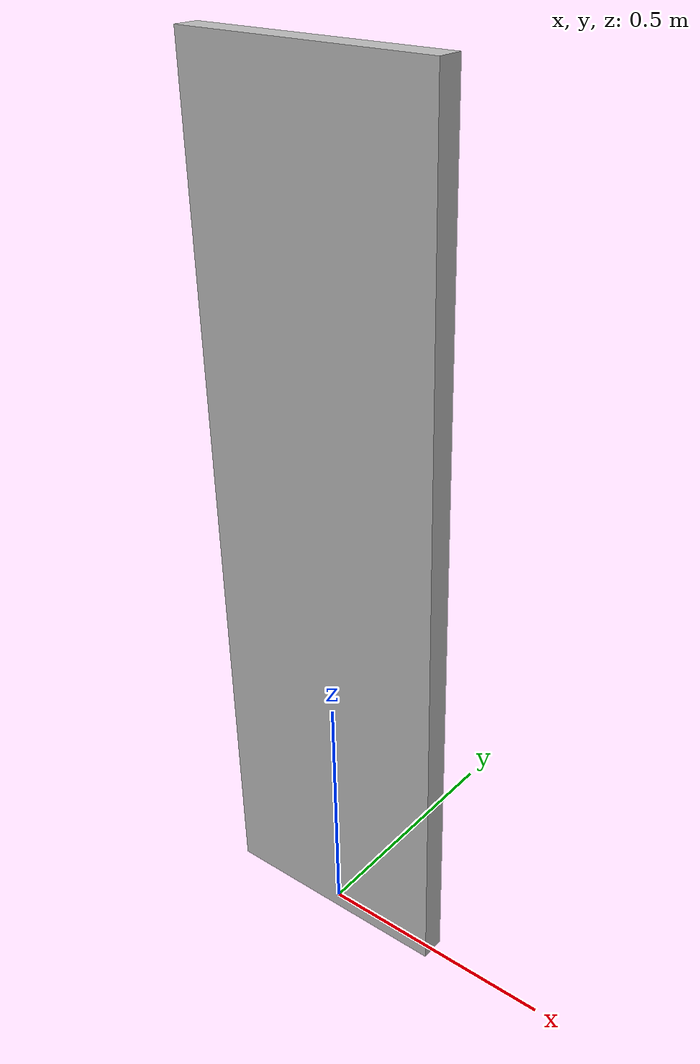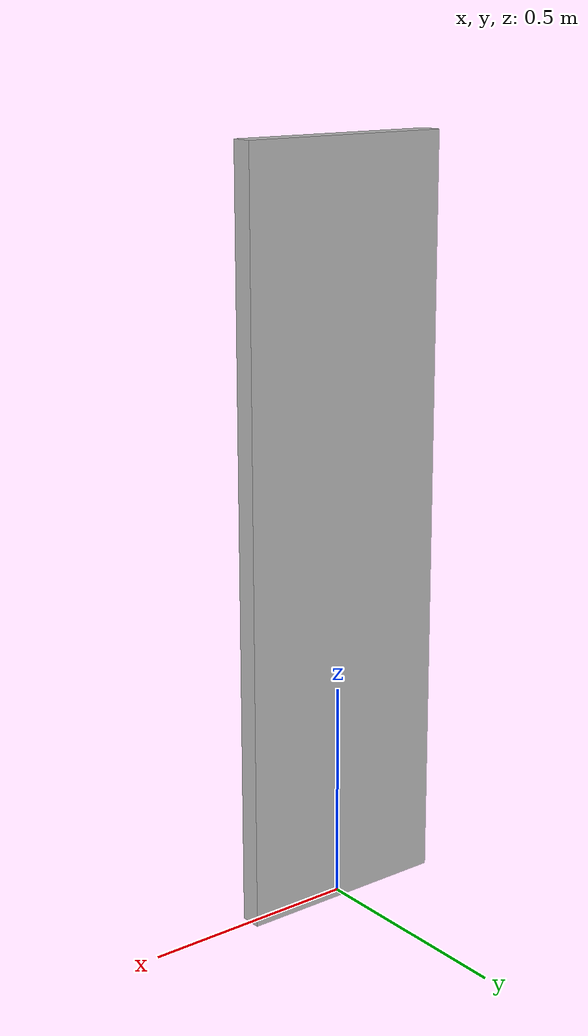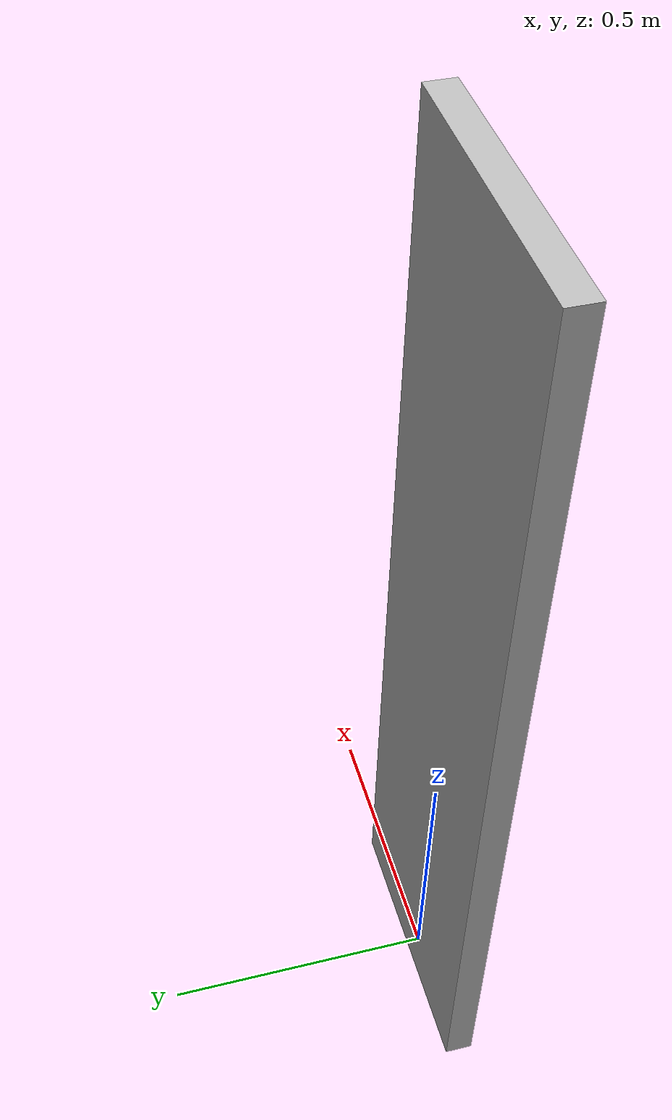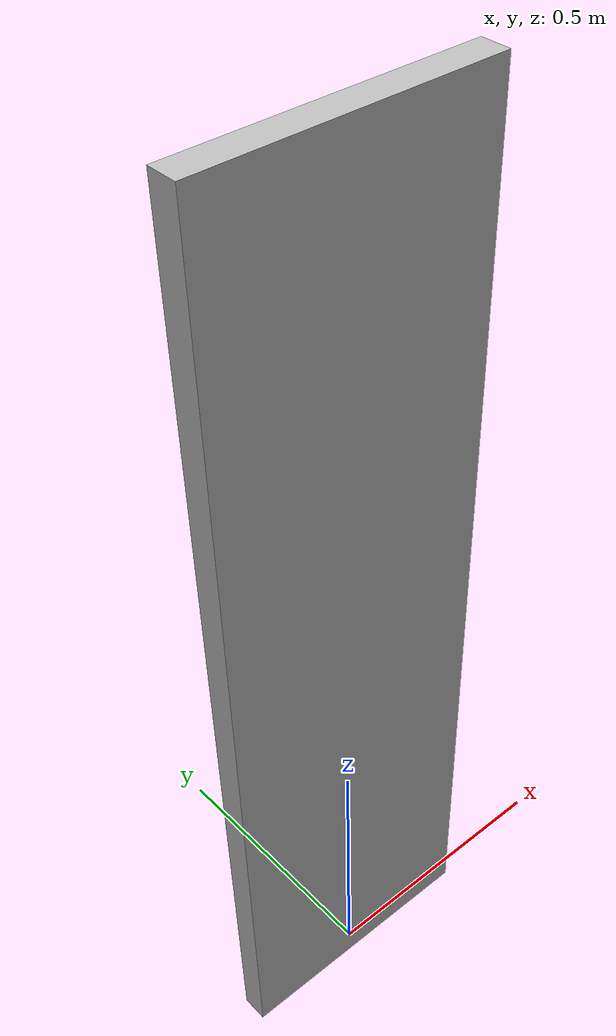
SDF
<?xml version="1.0" ?>
<sdf version="1.6">
  <model name="person_adult_3">
    <static>true</static>
    <link name="link">
      <gravity>false</gravity>
      <pose>0 0 0.86 0 0 0</pose>
      <visual name="visual">
        <geometry><box><size>0.5 0.05 1.72</size></box></geometry>
        <material>
          <script>
            <uri>model://person_adult_3/materials/scripts</uri>
            <uri>model://person_adult_3/materials/textures</uri>
            <name>PersonAdult3/Diffuse</name>
          </script>
        </material>
      </visual>
    </link>
  </model>
</sdf>
